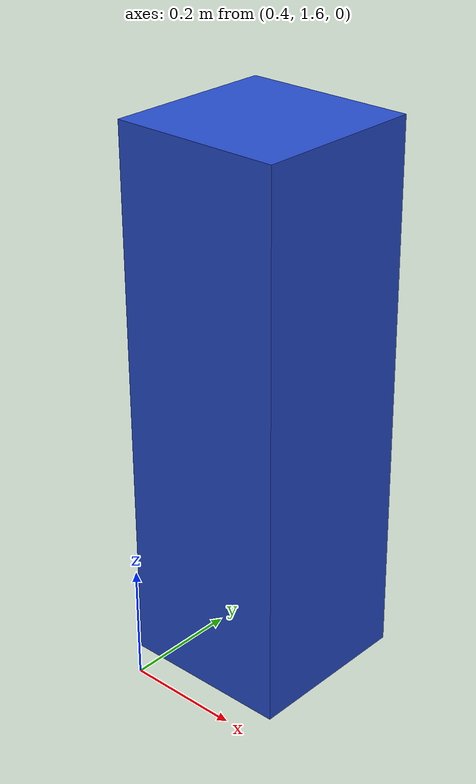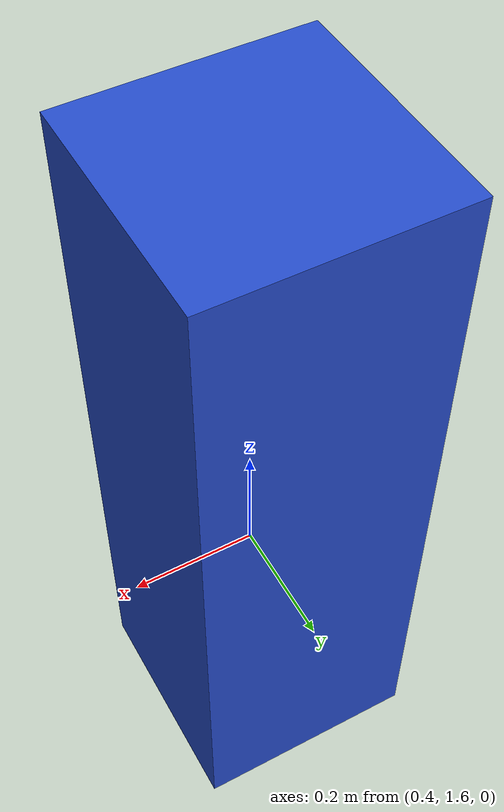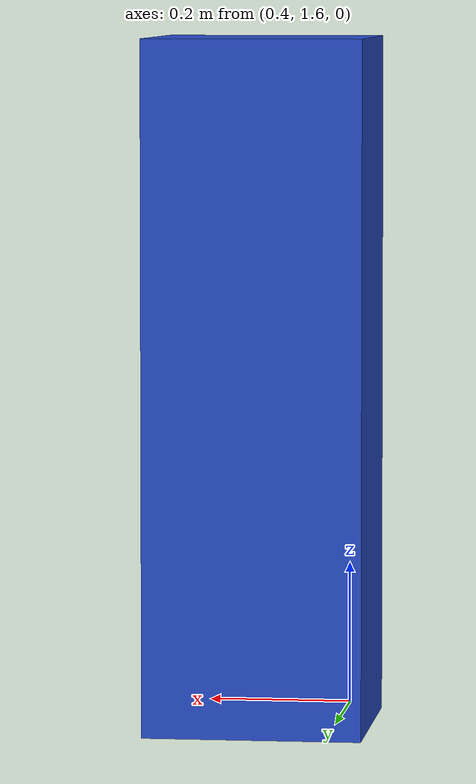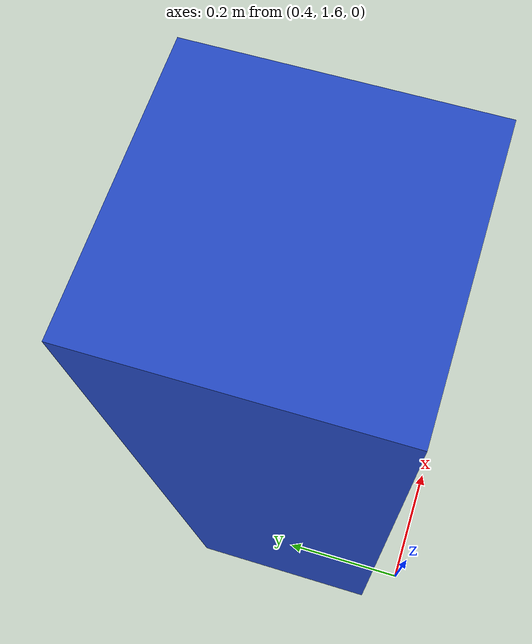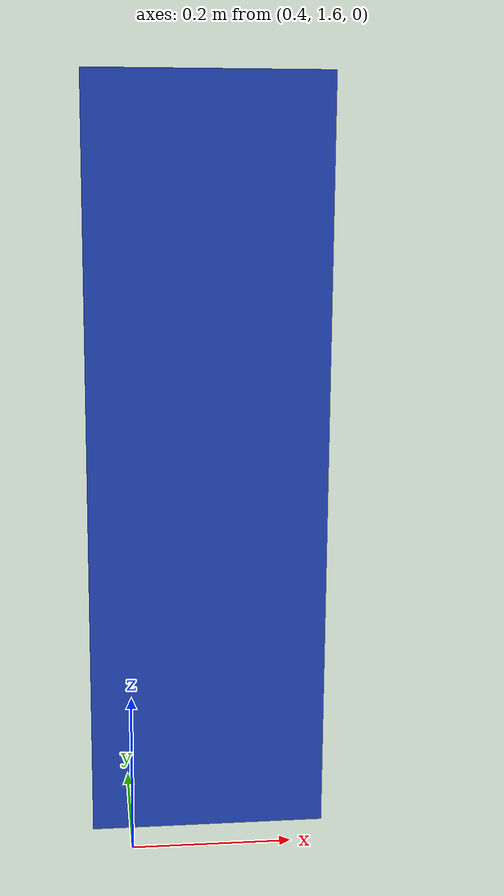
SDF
<sdf version='1.7'>
  <model name='robot_pedestal'>
    <link name='world_interface'>
      <inertial>
        <pose>0.5 1.8 0 0 -0 0</pose>
        <mass>500</mass>
        <inertia>
          <ixx>0.001</ixx>
          <ixy>0</ixy>
          <ixz>0</ixz>
          <iyy>0.001</iyy>
          <iyz>0</iyz>
          <izz>0.001</izz>
        </inertia>
      </inertial>
      <collision name='world_interface_fixed_joint_lump__robot1pedestal_link_collision'>
        <pose>0.5 1.8 0.475 0 -0 0</pose>
        <geometry>
          <box>
            <size>0.3 0.3 0.95</size>
          </box>
        </geometry>
        <surface>
          <contact>
            <ode/>
          </contact>
          <friction>
            <ode/>
          </friction>
        </surface>
      </collision>
      <visual name='world_interface_fixed_joint_lump__robot1pedestal_link_visual'>
        <pose>0.5 1.8 0.475 0 -0 0</pose>
        <geometry>
          <box>
            <size>0.3 0.3 0.95</size>
          </box>
        </geometry>
        <material>
          <script>
            <name>Gazebo/Blue</name>
            <uri>file://media/materials/scripts/gazebo.material</uri>
          </script>
        </material>
      </visual>
    </link>
    <static>1</static>
  </model>
</sdf>
